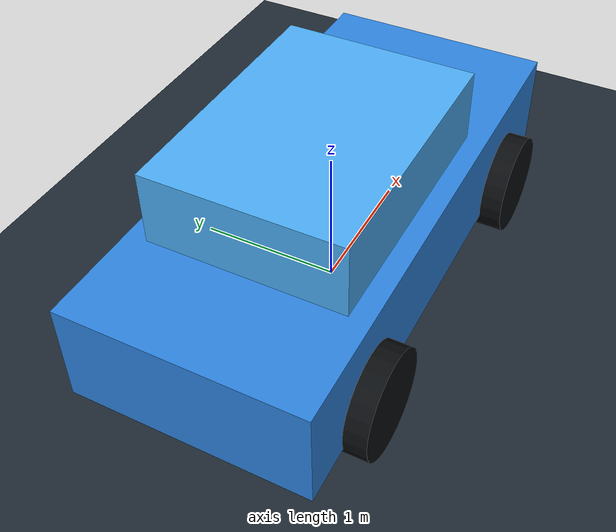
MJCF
<mujoco model="RealityPatch synthetic braking rig">
  <compiler angle="degree"/>
  <option timestep="0.01" gravity="0 0 0" integrator="RK4"/>
  <visual>
    <global offwidth="1440" offheight="900"/>
    <headlight ambient="0.35 0.35 0.35" diffuse="0.7 0.7 0.7"/>
  </visual>
  <default>
    <geom contype="0" conaffinity="0"/>
    <joint damping="0" armature="0" frictionloss="0"/>
  </default>
  <worldbody>
    <light pos="10 -8 20" dir="0 0 -1"/>
    <geom name="ground" type="plane" size="250 8 0.1" rgba="0.12 0.16 0.20 1"/>
    <body name="car" pos="0 0 0.6">
      <joint name="travel" type="slide" axis="1 0 0"/>
      <inertial pos="0 0 0" mass="1200" diaginertia="700 1800 2100"/>
      <geom name="chassis" type="box" size="1.8 0.8 0.35" rgba="0.18 0.52 0.88 1"/>
      <geom name="cabin" type="box" pos="-0.2 0 0.55" size="0.9 0.66 0.3" rgba="0.30 0.68 0.96 1"/>
      <geom name="wheel_fl" type="cylinder" pos="1.1 0.83 -0.25" euler="90 0 0" size="0.35 0.12" rgba="0.04 0.05 0.06 1"/>
      <geom name="wheel_fr" type="cylinder" pos="1.1 -0.83 -0.25" euler="90 0 0" size="0.35 0.12" rgba="0.04 0.05 0.06 1"/>
      <geom name="wheel_rl" type="cylinder" pos="-1.1 0.83 -0.25" euler="90 0 0" size="0.35 0.12" rgba="0.04 0.05 0.06 1"/>
      <geom name="wheel_rr" type="cylinder" pos="-1.1 -0.83 -0.25" euler="90 0 0" size="0.35 0.12" rgba="0.04 0.05 0.06 1"/>
    </body>
  </worldbody>
</mujoco>
